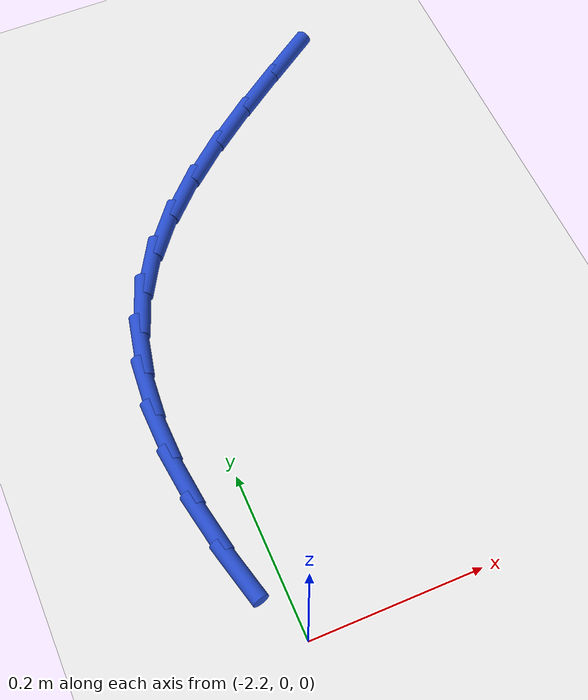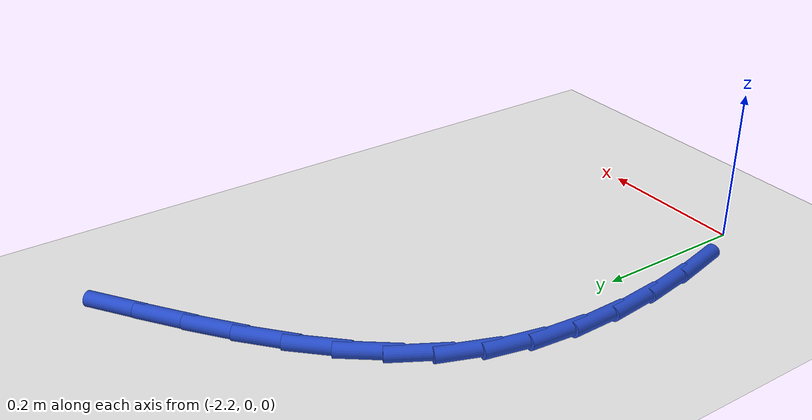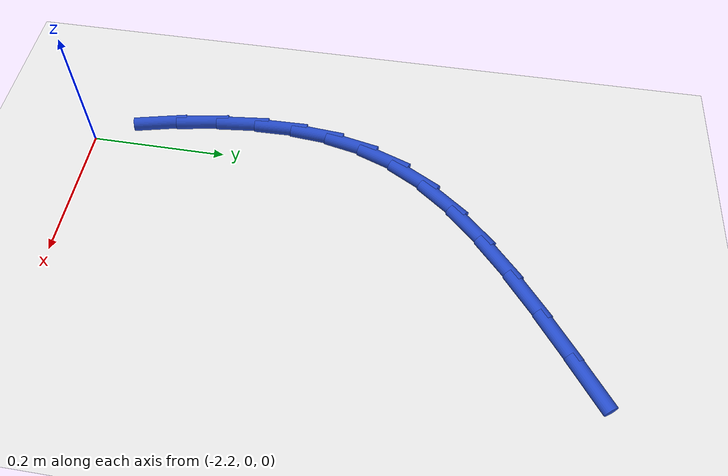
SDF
<sdf version="1.6">
 <world name="default">
  <model name="ground_plane">
   <static>1</static>
   <link name="link">
    <collision name="collision">
     <geometry><plane><normal>0 0 1</normal><size>100 100</size></plane></geometry>
     <surface><friction><ode><mu>100</mu><mu2>50</mu2></ode></friction></surface>
    </collision>
    <visual name="visual">
     <cast_shadows>0</cast_shadows>
     <geometry><plane><normal>0 0 1</normal><size>100 100</size></plane></geometry>
     <material>
      <script><uri>file://media/materials/scripts/gazebo.material</uri><name>Gazebo/WhiteGlow</name></script>
     </material>
    </visual>
   </link>
  </model>
  <model name="line">
   <link name="link_42">
    <pose>-1.9160749325670496 0.7268787482406179 0.01 0 1.57 0.6077868729711638</pose>
    <collision name="collision">
     <geometry><cylinder><radius>0.01</radius><length>0.08</length></cylinder></geometry>
    </collision>
    <visual name="visual">
     <material>
      <script><name>Gazebo/Blue</name><uri>file://media/materials/scripts/gazebo.material</uri></script>
     </material>
     <geometry><cylinder><radius>0.01</radius><length>0.08</length></cylinder></geometry>
    </visual>
   </link>
   <link name="link_43">
    <pose>-1.971080071706556 0.6886155380184862 0.01 0 1.57 0.6235593414497956</pose>
    <collision name="collision">
     <geometry><cylinder><radius>0.01</radius><length>0.08</length></cylinder></geometry>
    </collision>
    <visual name="visual">
     <material>
      <script><name>Gazebo/Blue</name><uri>file://media/materials/scripts/gazebo.material</uri></script>
     </material>
     <geometry><cylinder><radius>0.01</radius><length>0.08</length></cylinder></geometry>
    </visual>
   </link>
   <link name="link_44">
    <pose>-2.0240740685164775 0.65049716091541 0.01 0 1.57 0.6583906274298038</pose>
    <collision name="collision">
     <geometry><cylinder><radius>0.01</radius><length>0.08</length></cylinder></geometry>
    </collision>
    <visual name="visual">
     <material>
      <script><name>Gazebo/Blue</name><uri>file://media/materials/scripts/gazebo.material</uri></script>
     </material>
     <geometry><cylinder><radius>0.01</radius><length>0.08</length></cylinder></geometry>
    </visual>
   </link>
   <link name="link_45">
    <pose>-2.074000960683442 0.6118772436005536 0.01 0 1.57 0.7149774927151193</pose>
    <collision name="collision">
     <geometry><cylinder><radius>0.01</radius><length>0.08</length></cylinder></geometry>
    </collision>
    <visual name="visual">
     <material>
      <script><name>Gazebo/Blue</name><uri>file://media/materials/scripts/gazebo.material</uri></script>
     </material>
     <geometry><cylinder><radius>0.01</radius><length>0.08</length></cylinder></geometry>
    </visual>
   </link>
   <link name="link_46">
    <pose>-2.1198047858940776 0.5721094127430805 0.01 0 1.57 0.7968024261031763</pose>
    <collision name="collision">
     <geometry><cylinder><radius>0.01</radius><length>0.08</length></cylinder></geometry>
    </collision>
    <visual name="visual">
     <material>
      <script><name>Gazebo/Blue</name><uri>file://media/materials/scripts/gazebo.material</uri></script>
     </material>
     <geometry><cylinder><radius>0.01</radius><length>0.08</length></cylinder></geometry>
    </visual>
   </link>
   <link name="link_47">
    <pose>-2.1604295818350128 0.5305472950121545 0.01 0 1.57 0.9074150621930557</pose>
    <collision name="collision">
     <geometry><cylinder><radius>0.01</radius><length>0.08</length></cylinder></geometry>
    </collision>
    <visual name="visual">
     <material>
      <script><name>Gazebo/Blue</name><uri>file://media/materials/scripts/gazebo.material</uri></script>
     </material>
     <geometry><cylinder><radius>0.01</radius><length>0.08</length></cylinder></geometry>
    </visual>
   </link>
   <link name="link_48">
    <pose>-2.1948193861928753 0.4865445170769391 0.01 0 1.57 1.0485892895934765</pose>
    <collision name="collision">
     <geometry><cylinder><radius>0.01</radius><length>0.08</length></cylinder></geometry>
    </collision>
    <visual name="visual">
     <material>
      <script><name>Gazebo/Blue</name><uri>file://media/materials/scripts/gazebo.material</uri></script>
     </material>
     <geometry><cylinder><radius>0.01</radius><length>0.08</length></cylinder></geometry>
    </visual>
   </link>
   <link name="link_49">
    <pose>-2.221919100284547 0.4394552079081649 0.01 0 1.57 1.208288817189195</pose>
    <collision name="collision">
     <geometry><cylinder><radius>0.01</radius><length>0.08</length></cylinder></geometry>
    </collision>
    <visual name="visual">
     <material>
      <script><name>Gazebo/Blue</name><uri>file://media/materials/scripts/gazebo.material</uri></script>
     </material>
     <geometry><cylinder><radius>0.01</radius><length>0.08</length></cylinder></geometry>
    </visual>
   </link>
   <link name="link_50">
    <pose>-2.241100092308878 0.3888815366325632 0.01 0 1.57 1.3558415614225139</pose>
    <collision name="collision">
     <geometry><cylinder><radius>0.01</radius><length>0.08</length></cylinder></geometry>
    </collision>
    <visual name="visual">
     <material>
      <script><name>Gazebo/Blue</name><uri>file://media/materials/scripts/gazebo.material</uri></script>
     </material>
     <geometry><cylinder><radius>0.01</radius><length>0.08</length></cylinder></geometry>
    </visual>
   </link>
   <link name="link_51">
    <pose>-2.2528478484353704 0.3350736617212409 0.01 0 1.57 1.4831767560518014</pose>
    <collision name="collision">
     <geometry><cylinder><radius>0.01</radius><length>0.08</length></cylinder></geometry>
    </collision>
    <visual name="visual">
     <material>
      <script><name>Gazebo/Blue</name><uri>file://media/materials/scripts/gazebo.material</uri></script>
     </material>
     <geometry><cylinder><radius>0.01</radius><length>0.08</length></cylinder></geometry>
    </visual>
   </link>
   <link name="link_52">
    <pose>-2.2578275257238656 0.2783862411915849 0.01 0 1.57 -1.5518288212194595</pose>
    <collision name="collision">
     <geometry><cylinder><radius>0.01</radius><length>0.08</length></cylinder></geometry>
    </collision>
    <visual name="visual">
     <material>
      <script><name>Gazebo/Blue</name><uri>file://media/materials/scripts/gazebo.material</uri></script>
     </material>
     <geometry><cylinder><radius>0.01</radius><length>0.08</length></cylinder></geometry>
    </visual>
   </link>
   <link name="link_53">
    <pose>-2.256704281234207 0.219173933060982 0.01 0 1.57 -1.4643133904580428</pose>
    <collision name="collision">
     <geometry><cylinder><radius>0.01</radius><length>0.08</length></cylinder></geometry>
    </collision>
    <visual name="visual">
     <material>
      <script><name>Gazebo/Blue</name><uri>file://media/materials/scripts/gazebo.material</uri></script>
     </material>
     <geometry><cylinder><radius>0.01</radius><length>0.08</length></cylinder></geometry>
    </visual>
   </link>
   <link name="link_54">
    <pose>-2.2501432720262375 0.15779139534681919 0.01 0 1.57 -1.3933478395721144</pose>
    <collision name="collision">
     <geometry><cylinder><radius>0.01</radius><length>0.08</length></cylinder></geometry>
    </collision>
    <visual name="visual">
     <material>
      <script><name>Gazebo/Blue</name><uri>file://media/materials/scripts/gazebo.material</uri></script>
     </material>
     <geometry><cylinder><radius>0.01</radius><length>0.08</length></cylinder></geometry>
    </visual>
   </link>
   <link name="link_55">
    <pose>-2.2388096551598005 0.0945932860664834 0.01 0 1.57 -1.3363790885983546</pose>
    <collision name="collision">
     <geometry><cylinder><radius>0.01</radius><length>0.08</length></cylinder></geometry>
    </collision>
    <visual name="visual">
     <material>
      <script><name>Gazebo/Blue</name><uri>file://media/materials/scripts/gazebo.material</uri></script>
     </material>
     <geometry><cylinder><radius>0.01</radius><length>0.08</length></cylinder></geometry>
    </visual>
   </link>
  </model>
 </world>
</sdf>
